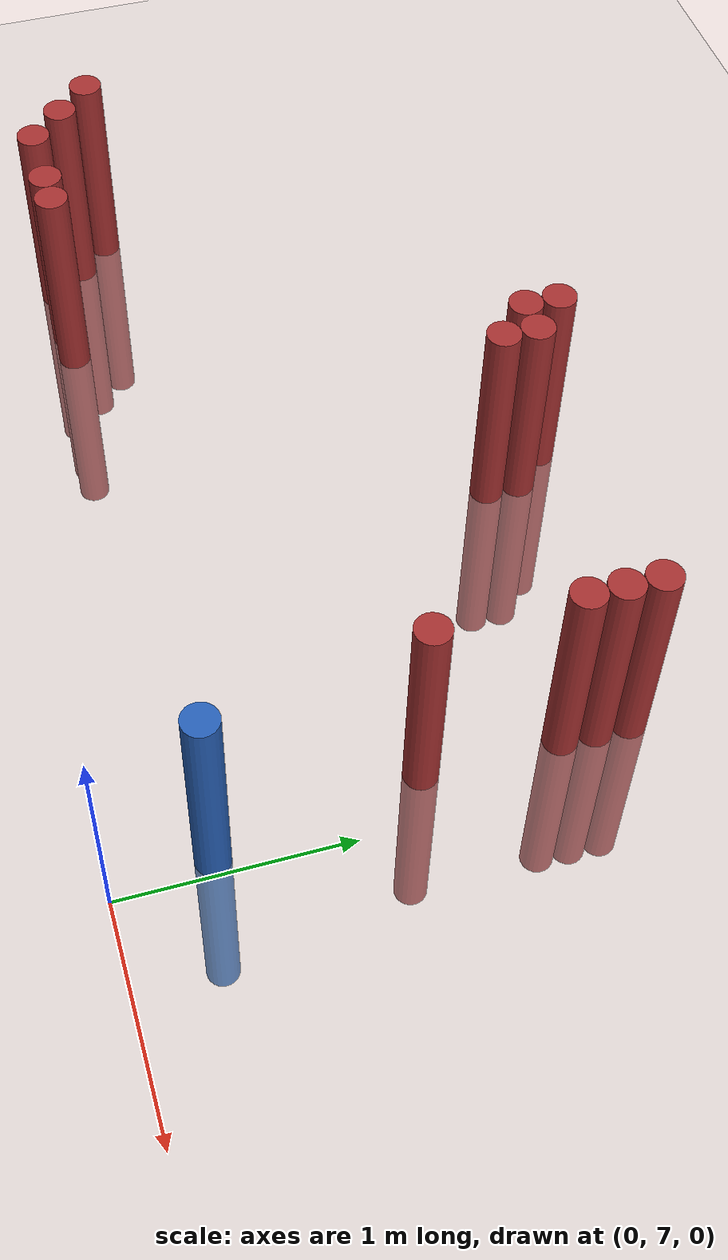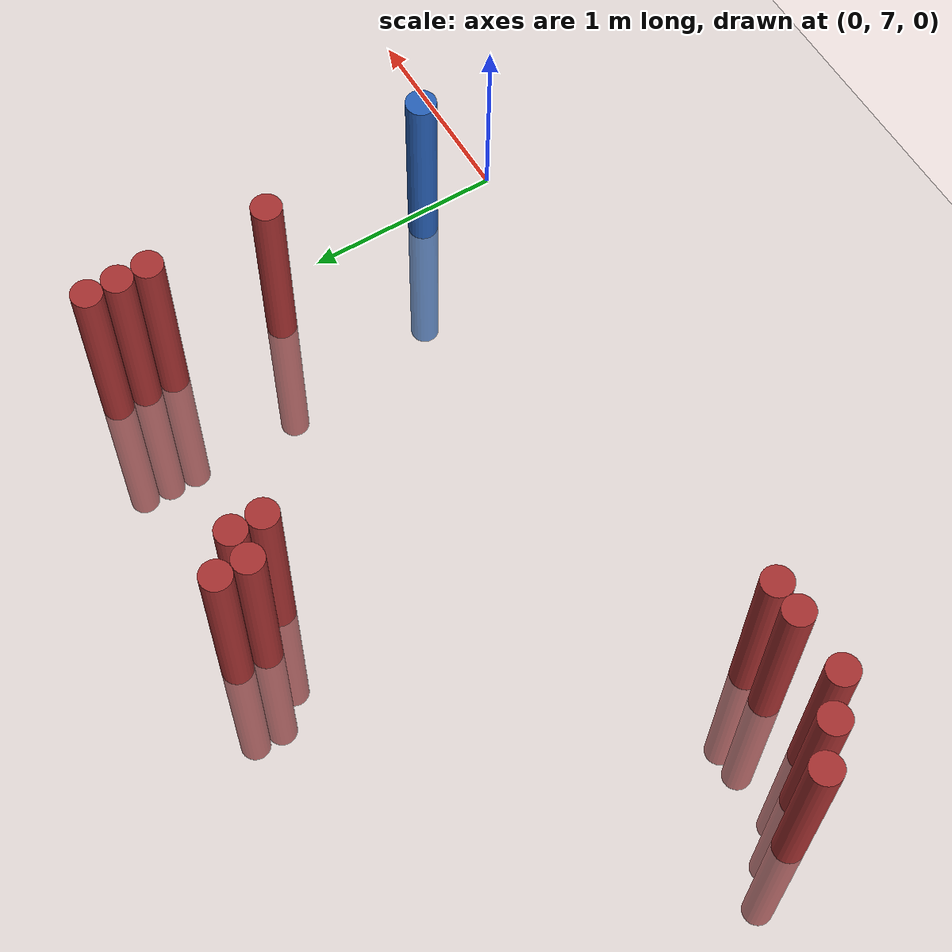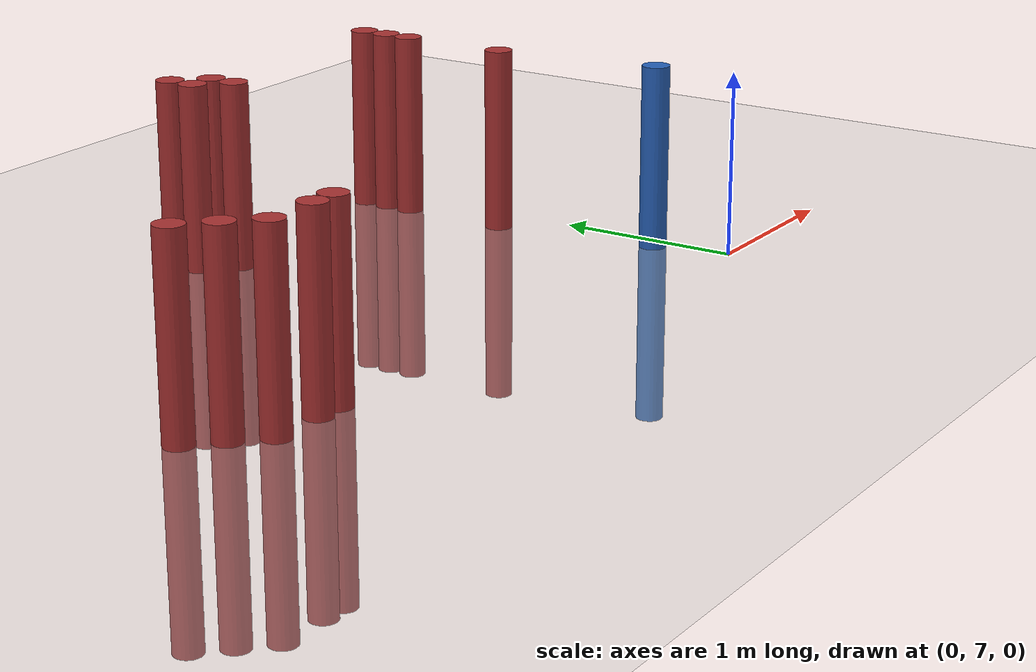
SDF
<sdf version="1.6">
 <world name="default">
  <model name="ground_plane">
   <static>1</static>
   <link name="link">
    <collision name="collision">
     <geometry><plane><normal>0 0 1</normal><size>100 100</size></plane></geometry>
     <surface><friction><ode><mu>100</mu><mu2>50</mu2></ode></friction></surface>
    </collision>
    <visual name="visual">
     <cast_shadows>0</cast_shadows>
     <geometry><plane><normal>0 0 1</normal><size>100 100</size></plane></geometry>
     <material>
      <script><uri>file://media/materials/scripts/gazebo.material</uri><name>Gazebo/Grey</name></script>
     </material>
    </visual>
   </link>
  </model>
  <model name="unit_cylinder_156">
   <static>1</static>
   <pose>-3.675000 7.725000 0.000000 0.000000 0.000000 0.000000</pose>
   <link name="link">
    <inertial>
     <mass>1</mass>
     <inertia><ixx>0.145833</ixx><ixy>0</ixy><ixz>0</ixz><iyy>0.145833</iyy><iyz>0</iyz><izz>0.125</izz></inertia>
    </inertial>
    <collision name="collision">
     <geometry><cylinder><radius>0.075000</radius><length>2</length></cylinder></geometry>
    </collision>
    <visual name="visual">
     <geometry><cylinder><radius>0.075000</radius><length>2</length></cylinder></geometry>
     <material>
      <ambient>0.648000 0.192000 0.192000 1</ambient>
      <diffuse>0.648000 0.192000 0.192000 1</diffuse>
     </material>
     <material>
      <script><name>Gazebo/Grey</name><uri>file://media/materials/scripts/gazebo.material</uri></script>
     </material>
    </visual>
   </link>
  </model>
  <model name="unit_cylinder_161">
   <static>1</static>
   <pose>-3.525000 7.575000 0.000000 0.000000 0.000000 0.000000</pose>
   <link name="link">
    <inertial>
     <mass>1</mass>
     <inertia><ixx>0.145833</ixx><ixy>0</ixy><ixz>0</ixz><iyy>0.145833</iyy><iyz>0</iyz><izz>0.125</izz></inertia>
    </inertial>
    <collision name="collision">
     <geometry><cylinder><radius>0.075000</radius><length>2</length></cylinder></geometry>
    </collision>
    <visual name="visual">
     <geometry><cylinder><radius>0.075000</radius><length>2</length></cylinder></geometry>
     <material>
      <ambient>0.648000 0.192000 0.192000 1</ambient>
      <diffuse>0.648000 0.192000 0.192000 1</diffuse>
     </material>
     <material>
      <script><name>Gazebo/Grey</name><uri>file://media/materials/scripts/gazebo.material</uri></script>
     </material>
    </visual>
   </link>
  </model>
  <model name="unit_cylinder_164">
   <static>1</static>
   <pose>-3.375000 7.425000 0.000000 0.000000 0.000000 0.000000</pose>
   <link name="link">
    <inertial>
     <mass>1</mass>
     <inertia><ixx>0.145833</ixx><ixy>0</ixy><ixz>0</ixz><iyy>0.145833</iyy><iyz>0</iyz><izz>0.125</izz></inertia>
    </inertial>
    <collision name="collision">
     <geometry><cylinder><radius>0.075000</radius><length>2</length></cylinder></geometry>
    </collision>
    <visual name="visual">
     <geometry><cylinder><radius>0.075000</radius><length>2</length></cylinder></geometry>
     <material>
      <ambient>0.648000 0.192000 0.192000 1</ambient>
      <diffuse>0.648000 0.192000 0.192000 1</diffuse>
     </material>
     <material>
      <script><name>Gazebo/Grey</name><uri>file://media/materials/scripts/gazebo.material</uri></script>
     </material>
    </visual>
   </link>
  </model>
  <model name="unit_cylinder_167">
   <static>1</static>
   <pose>-3.075000 7.425000 0.000000 0.000000 0.000000 0.000000</pose>
   <link name="link">
    <inertial>
     <mass>1</mass>
     <inertia><ixx>0.145833</ixx><ixy>0</ixy><ixz>0</ixz><iyy>0.145833</iyy><iyz>0</iyz><izz>0.125</izz></inertia>
    </inertial>
    <collision name="collision">
     <geometry><cylinder><radius>0.075000</radius><length>2</length></cylinder></geometry>
    </collision>
    <visual name="visual">
     <geometry><cylinder><radius>0.075000</radius><length>2</length></cylinder></geometry>
     <material>
      <ambient>0.648000 0.192000 0.192000 1</ambient>
      <diffuse>0.648000 0.192000 0.192000 1</diffuse>
     </material>
     <material>
      <script><name>Gazebo/Grey</name><uri>file://media/materials/scripts/gazebo.material</uri></script>
     </material>
    </visual>
   </link>
  </model>
  <model name="unit_cylinder_169">
   <static>1</static>
   <pose>-2.925000 7.425000 0.000000 0.000000 0.000000 0.000000</pose>
   <link name="link">
    <inertial>
     <mass>1</mass>
     <inertia><ixx>0.145833</ixx><ixy>0</ixy><ixz>0</ixz><iyy>0.145833</iyy><iyz>0</iyz><izz>0.125</izz></inertia>
    </inertial>
    <collision name="collision">
     <geometry><cylinder><radius>0.075000</radius><length>2</length></cylinder></geometry>
    </collision>
    <visual name="visual">
     <geometry><cylinder><radius>0.075000</radius><length>2</length></cylinder></geometry>
     <material>
      <ambient>0.648000 0.192000 0.192000 1</ambient>
      <diffuse>0.648000 0.192000 0.192000 1</diffuse>
     </material>
     <material>
      <script><name>Gazebo/Grey</name><uri>file://media/materials/scripts/gazebo.material</uri></script>
     </material>
    </visual>
   </link>
  </model>
  <model name="unit_cylinder_173">
   <static>1</static>
   <pose>-1.725000 9.225000 0.000000 0.000000 0.000000 0.000000</pose>
   <link name="link">
    <inertial>
     <mass>1</mass>
     <inertia><ixx>0.145833</ixx><ixy>0</ixy><ixz>0</ixz><iyy>0.145833</iyy><iyz>0</iyz><izz>0.125</izz></inertia>
    </inertial>
    <collision name="collision">
     <geometry><cylinder><radius>0.075000</radius><length>2</length></cylinder></geometry>
    </collision>
    <visual name="visual">
     <geometry><cylinder><radius>0.075000</radius><length>2</length></cylinder></geometry>
     <material>
      <ambient>0.648000 0.192000 0.192000 1</ambient>
      <diffuse>0.648000 0.192000 0.192000 1</diffuse>
     </material>
     <material>
      <script><name>Gazebo/Grey</name><uri>file://media/materials/scripts/gazebo.material</uri></script>
     </material>
    </visual>
   </link>
  </model>
  <model name="unit_cylinder_174">
   <static>1</static>
   <pose>-1.725000 9.375000 0.000000 0.000000 0.000000 0.000000</pose>
   <link name="link">
    <inertial>
     <mass>1</mass>
     <inertia><ixx>0.145833</ixx><ixy>0</ixy><ixz>0</ixz><iyy>0.145833</iyy><iyz>0</iyz><izz>0.125</izz></inertia>
    </inertial>
    <collision name="collision">
     <geometry><cylinder><radius>0.075000</radius><length>2</length></cylinder></geometry>
    </collision>
    <visual name="visual">
     <geometry><cylinder><radius>0.075000</radius><length>2</length></cylinder></geometry>
     <material>
      <ambient>0.648000 0.192000 0.192000 1</ambient>
      <diffuse>0.648000 0.192000 0.192000 1</diffuse>
     </material>
     <material>
      <script><name>Gazebo/Grey</name><uri>file://media/materials/scripts/gazebo.material</uri></script>
     </material>
    </visual>
   </link>
  </model>
  <model name="unit_cylinder_175">
   <static>1</static>
   <pose>-1.575000 9.075000 0.000000 0.000000 0.000000 0.000000</pose>
   <link name="link">
    <inertial>
     <mass>1</mass>
     <inertia><ixx>0.145833</ixx><ixy>0</ixy><ixz>0</ixz><iyy>0.145833</iyy><iyz>0</iyz><izz>0.125</izz></inertia>
    </inertial>
    <collision name="collision">
     <geometry><cylinder><radius>0.075000</radius><length>2</length></cylinder></geometry>
    </collision>
    <visual name="visual">
     <geometry><cylinder><radius>0.075000</radius><length>2</length></cylinder></geometry>
     <material>
      <ambient>0.648000 0.192000 0.192000 1</ambient>
      <diffuse>0.648000 0.192000 0.192000 1</diffuse>
     </material>
     <material>
      <script><name>Gazebo/Grey</name><uri>file://media/materials/scripts/gazebo.material</uri></script>
     </material>
    </visual>
   </link>
  </model>
  <model name="unit_cylinder_176">
   <static>1</static>
   <pose>-1.575000 9.225000 0.000000 0.000000 0.000000 0.000000</pose>
   <link name="link">
    <inertial>
     <mass>1</mass>
     <inertia><ixx>0.145833</ixx><ixy>0</ixy><ixz>0</ixz><iyy>0.145833</iyy><iyz>0</iyz><izz>0.125</izz></inertia>
    </inertial>
    <collision name="collision">
     <geometry><cylinder><radius>0.075000</radius><length>2</length></cylinder></geometry>
    </collision>
    <visual name="visual">
     <geometry><cylinder><radius>0.075000</radius><length>2</length></cylinder></geometry>
     <material>
      <ambient>0.648000 0.192000 0.192000 1</ambient>
      <diffuse>0.648000 0.192000 0.192000 1</diffuse>
     </material>
     <material>
      <script><name>Gazebo/Grey</name><uri>file://media/materials/scripts/gazebo.material</uri></script>
     </material>
    </visual>
   </link>
  </model>
  <model name="unit_cylinder_183">
   <static>1</static>
   <pose>-0.225000 8.325000 0.000000 0.000000 0.000000 0.000000</pose>
   <link name="link">
    <inertial>
     <mass>1</mass>
     <inertia><ixx>0.145833</ixx><ixy>0</ixy><ixz>0</ixz><iyy>0.145833</iyy><iyz>0</iyz><izz>0.125</izz></inertia>
    </inertial>
    <collision name="collision">
     <geometry><cylinder><radius>0.075000</radius><length>2</length></cylinder></geometry>
    </collision>
    <visual name="visual">
     <geometry><cylinder><radius>0.075000</radius><length>2</length></cylinder></geometry>
     <material>
      <ambient>0.648000 0.192000 0.192000 1</ambient>
      <diffuse>0.648000 0.192000 0.192000 1</diffuse>
     </material>
     <material>
      <script><name>Gazebo/Grey</name><uri>file://media/materials/scripts/gazebo.material</uri></script>
     </material>
    </visual>
   </link>
  </model>
  <model name="unit_cylinder_184">
   <static>1</static>
   <pose>-0.225000 8.925000 0.000000 0.000000 0.000000 0.000000</pose>
   <link name="link">
    <inertial>
     <mass>1</mass>
     <inertia><ixx>0.145833</ixx><ixy>0</ixy><ixz>0</ixz><iyy>0.145833</iyy><iyz>0</iyz><izz>0.125</izz></inertia>
    </inertial>
    <collision name="collision">
     <geometry><cylinder><radius>0.075000</radius><length>2</length></cylinder></geometry>
    </collision>
    <visual name="visual">
     <geometry><cylinder><radius>0.075000</radius><length>2</length></cylinder></geometry>
     <material>
      <ambient>0.648000 0.192000 0.192000 1</ambient>
      <diffuse>0.648000 0.192000 0.192000 1</diffuse>
     </material>
     <material>
      <script><name>Gazebo/Grey</name><uri>file://media/materials/scripts/gazebo.material</uri></script>
     </material>
    </visual>
   </link>
  </model>
  <model name="unit_cylinder_185">
   <static>1</static>
   <pose>-0.225000 9.075000 0.000000 0.000000 0.000000 0.000000</pose>
   <link name="link">
    <inertial>
     <mass>1</mass>
     <inertia><ixx>0.145833</ixx><ixy>0</ixy><ixz>0</ixz><iyy>0.145833</iyy><iyz>0</iyz><izz>0.125</izz></inertia>
    </inertial>
    <collision name="collision">
     <geometry><cylinder><radius>0.075000</radius><length>2</length></cylinder></geometry>
    </collision>
    <visual name="visual">
     <geometry><cylinder><radius>0.075000</radius><length>2</length></cylinder></geometry>
     <material>
      <ambient>0.648000 0.192000 0.192000 1</ambient>
      <diffuse>0.648000 0.192000 0.192000 1</diffuse>
     </material>
     <material>
      <script><name>Gazebo/Grey</name><uri>file://media/materials/scripts/gazebo.material</uri></script>
     </material>
    </visual>
   </link>
  </model>
  <model name="unit_cylinder_186">
   <static>1</static>
   <pose>-0.225000 9.225000 0.000000 0.000000 0.000000 0.000000</pose>
   <link name="link">
    <inertial>
     <mass>1</mass>
     <inertia><ixx>0.145833</ixx><ixy>0</ixy><ixz>0</ixz><iyy>0.145833</iyy><iyz>0</iyz><izz>0.125</izz></inertia>
    </inertial>
    <collision name="collision">
     <geometry><cylinder><radius>0.075000</radius><length>2</length></cylinder></geometry>
    </collision>
    <visual name="visual">
     <geometry><cylinder><radius>0.075000</radius><length>2</length></cylinder></geometry>
     <material>
      <ambient>0.648000 0.192000 0.192000 1</ambient>
      <diffuse>0.648000 0.192000 0.192000 1</diffuse>
     </material>
     <material>
      <script><name>Gazebo/Grey</name><uri>file://media/materials/scripts/gazebo.material</uri></script>
     </material>
    </visual>
   </link>
  </model>
  <model name="unit_cylinder_202">
   <static>1</static>
   <pose>-0.075000 7.425000 0.000000 0.000000 0.000000 0.000000</pose>
   <link name="link">
    <inertial>
     <mass>1</mass>
     <inertia><ixx>0.145833</ixx><ixy>0</ixy><ixz>0</ixz><iyy>0.145833</iyy><iyz>0</iyz><izz>0.125</izz></inertia>
    </inertial>
    <collision name="collision">
     <geometry><cylinder><radius>0.075000</radius><length>2</length></cylinder></geometry>
    </collision>
    <visual name="visual">
     <geometry><cylinder><radius>0.075000</radius><length>2</length></cylinder></geometry>
     <material>
      <ambient>0.152000 0.379000 0.720000 1</ambient>
      <diffuse>0.152000 0.379000 0.720000 1</diffuse>
     </material>
     <material>
      <script><name>Gazebo/Grey</name><uri>file://media/materials/scripts/gazebo.material</uri></script>
     </material>
    </visual>
   </link>
  </model>
 </world>
</sdf>
